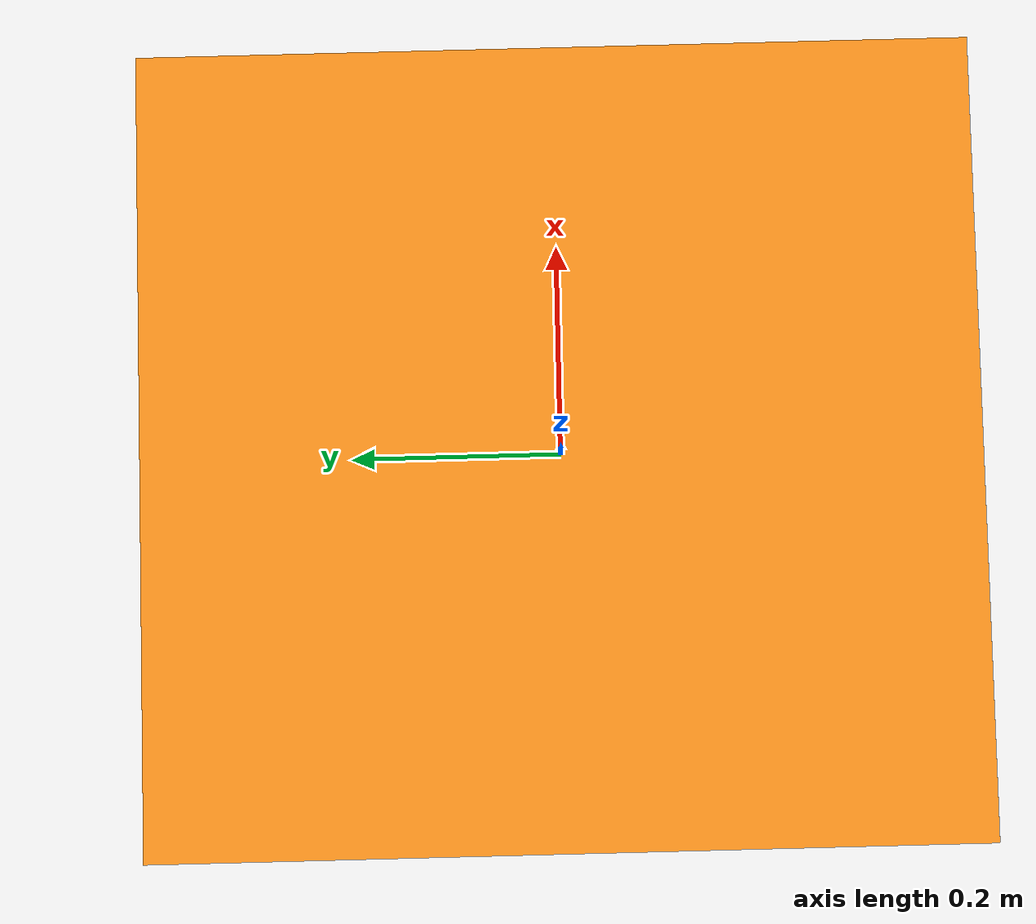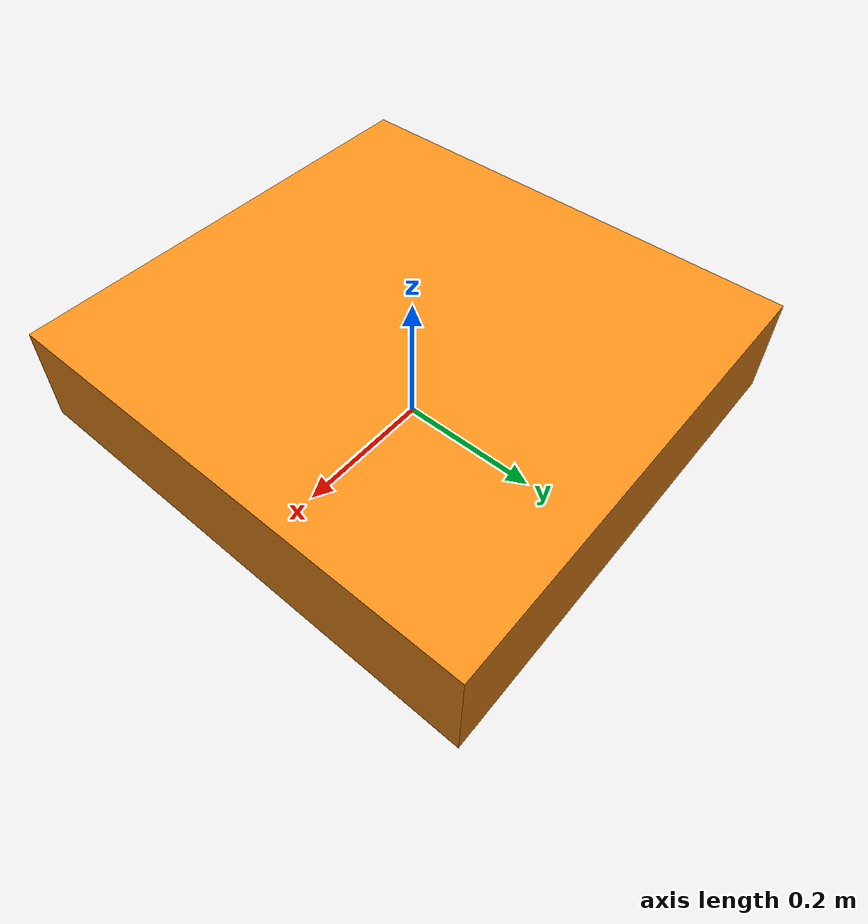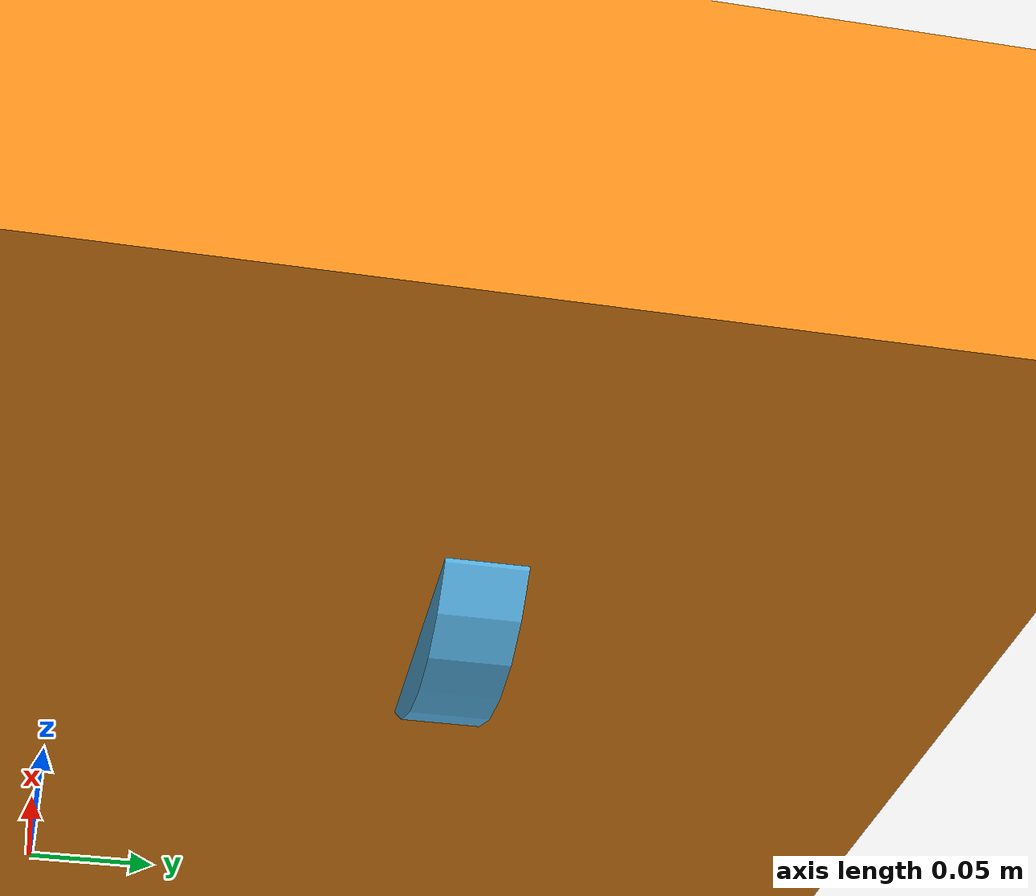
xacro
<?xml version="1.0"?>
<!-- Revolute-Revolute Manipulator -->
<robot name="icart_mini" xmlns:xacro="http://www.ros.org/wiki/xacro">
  <!-- Constants for robot dimensions -->
  <xacro:property name="PI" value="3.1415926535897931"/>

  <!-- Import Rviz colors -->
  <xacro:include filename="$(find icart_mini_description)/urdf/materials.xacro" />
  <xacro:include filename="$(find icart_mini_description)/urdf/icart_mini.gazebo"/>

  <!-- Base Link -->
  <link name="base_link">
    <collision>
      <origin xyz="0 0 0.1" rpy="0 0 0"/>
      <geometry>
	<box size=".670 .70 .15"/>
      </geometry>
    </collision>

    <visual>
      <origin xyz="0 0 0.1" rpy="0 0 0"/>
      <geometry>
	<box size=".670 .70 .15"/>
      </geometry>
      <material name="orange"/>
    </visual>

    <collision name="collision">
      <origin xyz="-0.175 0.0 0.05" rpy="0 1.5707 1.5707"/>
      <geometry>
        <cylinder  length="0.03" radius="0.04625"/>
      </geometry>
    </collision>
    <visual name="visual">
      <origin xyz="-0.175 0.0 0.05" rpy="0 1.5707 1.5707"/>
      <geometry>
        <cylinder  length="0.03" radius="0.04625"/>
      </geometry>
    </visual>

    <collision name="collision">
      <origin xyz="0.175 0.0 0.05" rpy="0 1.5707 1.5707"/>
      <geometry>
        <cylinder  length="0.03" radius="0.04625"/>
      </geometry>
    </collision>

    <inertial>
       <mass value="20.0" />
       <origin xyz="0.15 0 0" rpy="0 0 0"/>
       <inertia ixx="1" ixy="0" ixz="0" iyy="1" iyz="0" izz="1" />
    </inertial>
  </link>

  <link name="visual_left_wheel">
    <visual name="visual">
      <origin xyz="0 0.0 0" rpy="0 1.5707 1.5707"/>
      <geometry>
        <cylinder  length="0.03" radius="0.0725"/>
      </geometry>
    </visual>
  </link>

  <joint type="fixed" name="visual_left_wheel_hinge">
    <origin xyz="0.15 0.15 0.075" rpy="0 0 0"/>
    <child link="visual_left_wheel">visual_left_wheel</child>
    <parent link="base_link">base_link</parent>
    <axis xyz="0 1 0"/>
  </joint>

  <link name="left_wheel">
    <collision name="collision">
      <origin xyz="0 0.0 0" rpy="0 1.5707 1.5707"/>
      <geometry>
         <cylinder  length="0.03" radius="0.0725"/>
      </geometry>
    </collision>
    <inertial>
      <mass value="1" />
      <origin xyz="0 0.0 0"/>
      <inertia ixx="0.1" ixy="0" ixz="0" iyy="0.1" iyz="0" izz="0.1" />
    </inertial>
  </link>

  <joint type="revolute" name="left_wheel_hinge">
    <origin xyz="0.15 0.15 0.075" rpy="0 0 0"/>
    <child link="left_wheel">left_wheel</child>
    <parent link="base_link">base_link</parent>
    <axis xyz="0 1 0"/>
    <limit effort="100" velocity="100.0"  lower="-5000" upper="5000" />
  </joint>

  <link name="visual_right_wheel">
    <visual name="visual">
      <origin xyz="0 0.0 0" rpy="0 1.5707 1.5707"/>
      <geometry>
        <cylinder  length="0.03" radius="0.0725"/>
      </geometry>
    </visual>
  </link>

  <joint type="fixed" name="visual_right_wheel_hinge">
    <origin xyz="0.15 -0.15 0.075" rpy="0 0 0"/>
    <child link="visual_right_wheel">visual_right_wheel</child>
    <parent link="base_link">base_link</parent>
    <axis xyz="0 1 0"/>
  </joint>

  <link name="right_wheel">
    <collision name="collision">
      <origin xyz="0 0.0 0" rpy="0 1.5707 1.5707"/>
      <geometry>
         <cylinder  length="0.03" radius="0.0725"/>
      </geometry>
    </collision>
    <inertial>
      <mass value="1" />
      <origin xyz="0 0.0 0"/>
      <inertia ixx="0.1" ixy="0" ixz="0" iyy="0.1" iyz="0" izz="0.1" />
    </inertial>
  </link>

  <joint type="revolute" name="right_wheel_hinge">
    <origin xyz="0.15 -0.15 0.075" rpy="0 0 0"/>
    <child link="right_wheel">right_wheel</child>
    <parent link="base_link">base_link</parent>
    <axis xyz="0 1 0"/>
    <limit effort="100" velocity="100.0"  lower="-5000" upper="5000" />
  </joint>

  <transmission name="tran1">
    <type>transmission_interface/SimpleTransmission</type>
    <joint name="left_wheel_hinge">
      <hardwareInterface>VelocityJointInterface</hardwareInterface>
    </joint>
  <actuator name="left_motor">
      <hardwareInterface>VelocityJointInterface</hardwareInterface>
      <mechanicalReduction>1</mechanicalReduction>
    </actuator>
  </transmission>

  <transmission name="tran2">
    <type>transmission_interface/SimpleTransmission</type>
    <joint name="right_wheel_hinge">
      <hardwareInterface>VelocityJointInterface</hardwareInterface>
    </joint>
  <actuator name="right_motor">
      <hardwareInterface>VelocityJointInterface</hardwareInterface>
      <mechanicalReduction>1</mechanicalReduction>
    </actuator>
  </transmission>
</robot>
